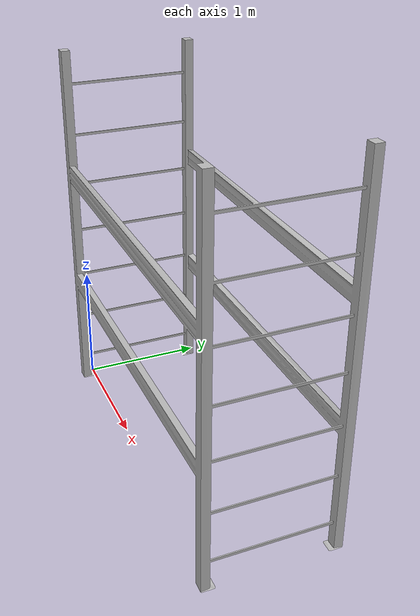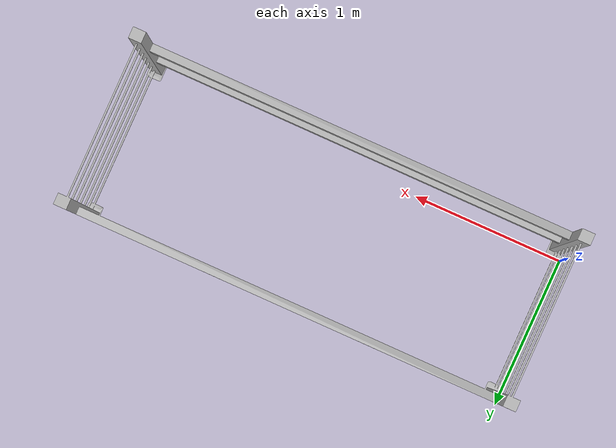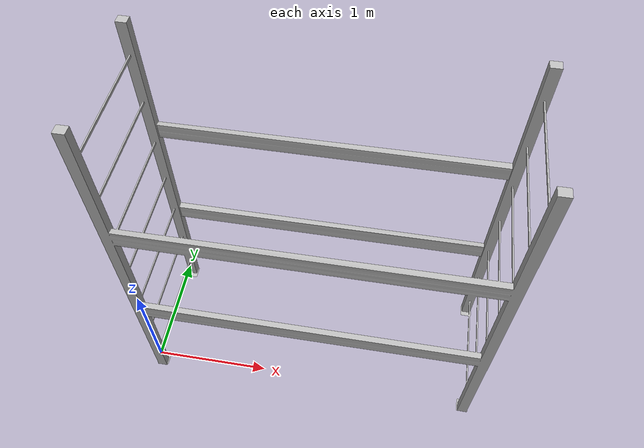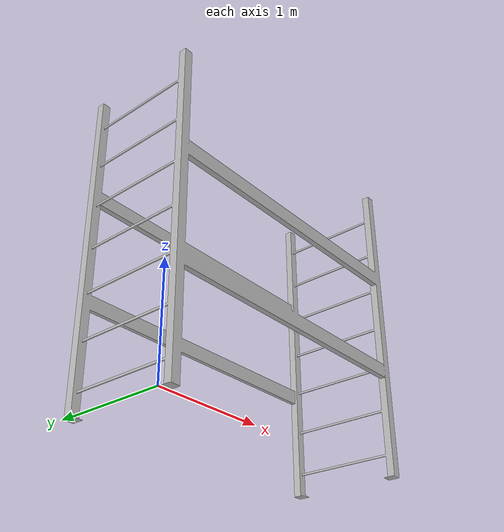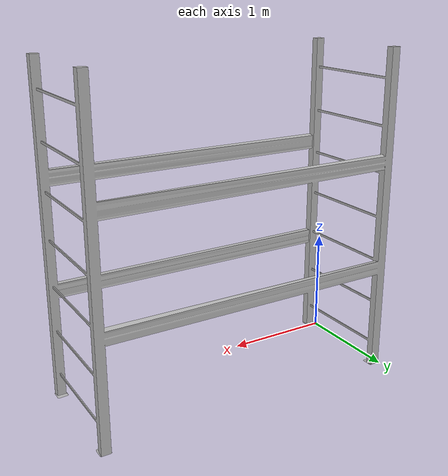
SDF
<sdf version="1.9">
  <model name="shelf" canonical_link="node0_link">

    <link name="node0_link">
      <inertial>
        <inertia>
          <ixx>24.93052</ixx>
          <ixy>0</ixy>
          <ixz>0</ixz>
          <iyy>54.42990</iyy>
          <iyz>0</iyz>
          <izz>42.61899</izz>
        </inertia>
        <pose>1.44044 0.43986 1.49318 0 0 0</pose>
        <mass>40.00000</mass>
      </inertial>

      <visual name="node0">
        <pose>0 0 0 0 0 0</pose>
        <geometry>
          <mesh>
            <uri>model://shelf/meshes/textured_shelf_low_poly.dae</uri>
            <scale>1.00000 1.00000 1.00000</scale>
          </mesh>
        </geometry>
      </visual>
    </link>

    <plugin filename="gz-sim-label-system" name="gz::sim::systems::Label">
      <label>10</label>
    </plugin>

    <link name="collision_shelf_1">
      <inertial>
        <mass>0.0001</mass>
        <inertia>
          <ixx>1e-6</ixx>
          <iyy>1e-6</iyy>
          <izz>1e-6</izz>
          <ixy>0</ixy>
          <ixz>0</ixz>
          <iyz>0</iyz>
        </inertia>
      </inertial>
      <collision name="collision_shelf_1">
        <pose>1.45 0.45 0 0 0 0</pose>
        <geometry>
          <box>
            <size>2.7 1.2 0.13</size>
          </box>
        </geometry>
        <surface>
          <friction>
            <ode>
              <mu>1</mu>
              <mu2>1</mu2>
              <slip1>0</slip1>
              <slip2>0</slip2>
            </ode>
          </friction>
          <contact>
            <ode>
              <soft_cfm>0</soft_cfm>
              <soft_erp>0.2</soft_erp>
              <kp>1e+13</kp>
              <kd>1</kd>
              <max_vel>0.01</max_vel>
              <min_depth>0</min_depth>
            </ode>
          </contact>
        </surface>
      </collision>
    </link>

    <link name="collision_shelf_2">
      <inertial>
        <mass>0.0001</mass>
        <inertia>
          <ixx>1e-6</ixx>
          <iyy>1e-6</iyy>
          <izz>1e-6</izz>
          <ixy>0</ixy>
          <ixz>0</ixz>
          <iyz>0</iyz>
        </inertia>
      </inertial>
      <collision name="collision_shelf_2">
        <pose>1.45 0.45 1 0 0 0</pose>
        <geometry>
          <box>
            <size>2.7 1.2 0.13</size>
          </box>
        </geometry>
        <surface>
          <friction>
            <ode>
              <mu>1</mu>
              <mu2>1</mu2>
              <slip1>0</slip1>
              <slip2>0</slip2>
            </ode>
          </friction>
          <contact>
            <ode>
              <soft_cfm>0</soft_cfm>
              <soft_erp>0.2</soft_erp>
              <kp>1e+13</kp>
              <kd>1</kd>
              <max_vel>0.01</max_vel>
              <min_depth>0</min_depth>
            </ode>
          </contact>
        </surface>
      </collision>
    </link>

    <link name="collision_shelf_3">
      <inertial>
        <mass>0.0001</mass>
        <inertia>
          <ixx>1e-6</ixx>
          <iyy>1e-6</iyy>
          <izz>1e-6</izz>
          <ixy>0</ixy>
          <ixz>0</ixz>
          <iyz>0</iyz>
        </inertia>
      </inertial>
      <collision name="collision_shelf_3">
        <pose>1.45 0.45 2 0 0 0</pose>
        <geometry>
          <box>
            <size>2.7 1.2 0.13</size>
          </box>
        </geometry>
        <surface>
          <friction>
            <ode>
              <mu>1</mu>
              <mu2>1</mu2>
              <slip1>0</slip1>
              <slip2>0</slip2>
            </ode>
          </friction>
          <contact>
            <ode>
              <soft_cfm>0</soft_cfm>
              <soft_erp>0.2</soft_erp>
              <kp>1e+13</kp>
              <kd>1</kd>
              <max_vel>0.01</max_vel>
              <min_depth>0</min_depth>
            </ode>
          </contact>
        </surface>
      </collision>
    </link>

    <joint name="fixed_joint_1" type="fixed">
      <parent>node0_link</parent>
      <child>collision_shelf_1</child>
    </joint>

    <joint name="fixed_joint_2" type="fixed">
      <parent>node0_link</parent>
      <child>collision_shelf_2</child>
    </joint>

    <joint name="fixed_joint_3" type="fixed">
      <parent>node0_link</parent>
      <child>collision_shelf_3</child>
    </joint>

  </model>
</sdf>
